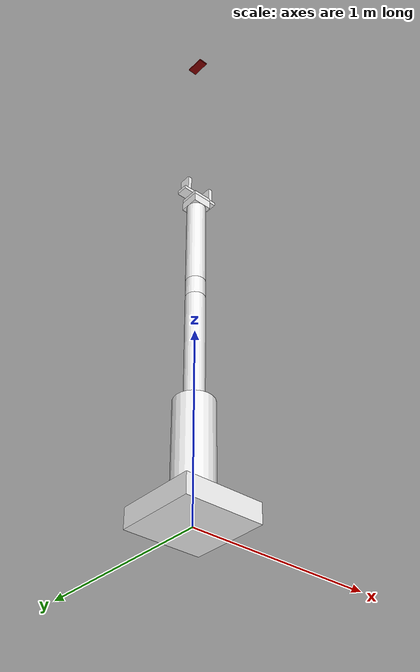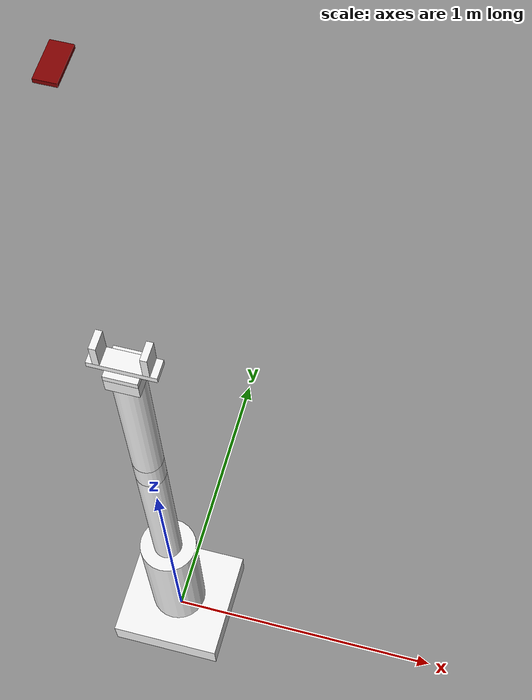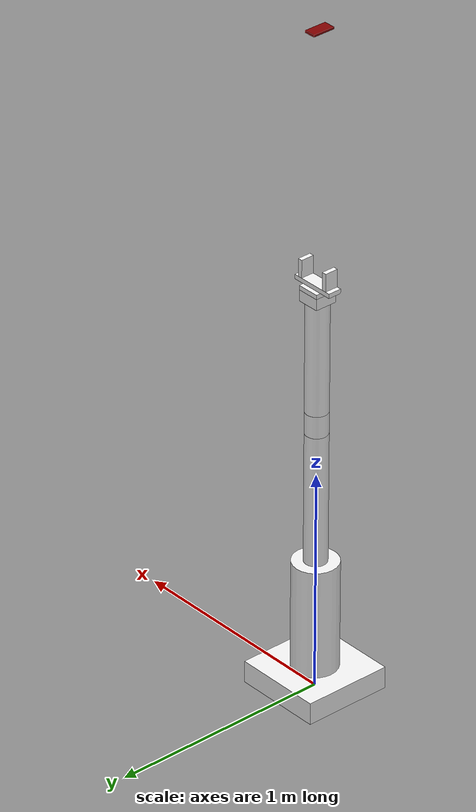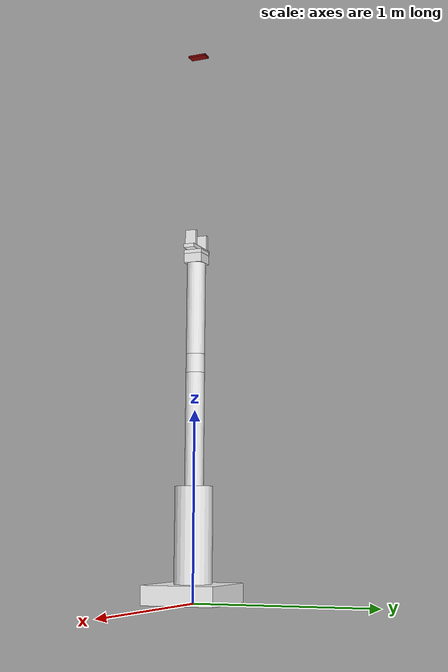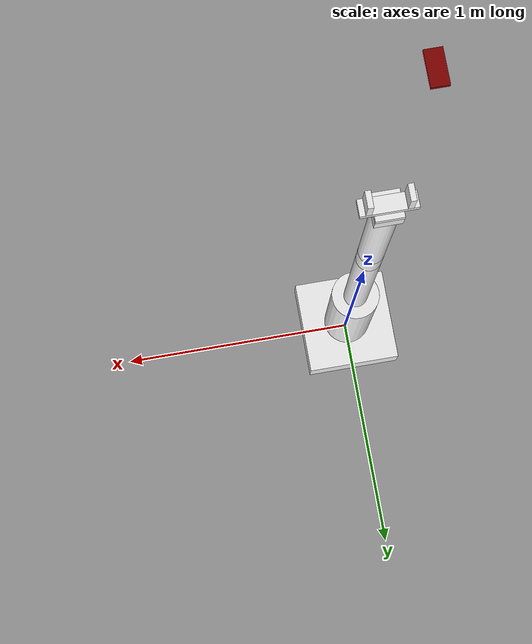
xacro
<?xml version="1.0"?>
<robot xmlns:xacro="http://www.ros.org/wiki/xacro" name="pnp">
    <xacro:arg name="initial_positions_file" default="initial_positions.yaml" />

    <!-- Import pnp urdf file -->
    <xacro:include filename="$(find arm_description)/urdf/pnp.urdf.xacro" />

    <!-- Import control_xacro -->
    <xacro:include filename="pnp.ros2_control.xacro" />

    <xacro:pnp_ros2_control name="FakeSystem" initial_positions_file="$(arg initial_positions_file)"/>

</robot>

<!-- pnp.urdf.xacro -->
<robot name="pnp" xmlns:xacro="http://www.ros.org/wiki/xacro">

    <xacro:include filename="common_properties.xacro" />
    <xacro:include filename="robotic_arm.xacro" />
    <xacro:include filename="gripper.xacro" />
    <xacro:include filename="rgbd_camera.xacro" />
    <xacro:include filename="pnp_gazebo.xacro" />

</robot>

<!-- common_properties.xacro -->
<robot xmlns:xacro="http://www.ros.org/wiki/xacro">

    <material name="green">
        <color rgba="0 0.5 0 1" />
    </material>

    <material name="grey">
        <color rgba="0.95 0.95 0.95 1" />
    </material>

    <material name="blue">
        <color rgba="0 0 0.5 1" />
    </material>

    <material name="red">
        <color rgba="0.5 0 0 1" />
    </material>

    <xacro:macro name="box_inertia" params="m x y z o_xyz o_rpy">
        <inertial>
            <mass value="${m}" />
            <origin xyz="${o_xyz}" rpy="${o_rpy}" />
            <inertia ixx="${(m/12) * (y*y + z*z)}" ixy="0" ixz="0"
                     iyy="${(m/12) * (x*x + z*z)}" iyz="0"
                     izz="${(m/12) * (x*x + y*y)}" />
        </inertial>
    </xacro:macro>

    <xacro:macro name="cylinder_inertia" params="m r h o_xyz o_rpy">
        <inertial>
            <mass value="${m}" />
            <origin xyz="${o_xyz}" rpy="${o_rpy}" />
            <inertia ixx="${(m/12) * (3*r*r + h*h)}" ixy="0" ixz="0"
                      iyy="${(m/12) * (3*r*r + h*h)}" iyz="0"
                      izz="${(m*r*r)/2}" />
        </inertial>
    </xacro:macro>

    <xacro:macro name="sphere_inertia" params="m r o_xyz o_rpy" >
        <inertial>
            <mass value="${m}" />
            <origin xyz="${o_xyz}" rpy="${o_rpy}" />
            <inertia ixx="${(2*m*r*r)/5}" ixy="0" ixz="0"
                    iyy="${(2*m*r*r)/5}" iyz="0"
                    izz="${(2*m*r*r)/5}" />
        </inertial>
    </xacro:macro>

</robot>

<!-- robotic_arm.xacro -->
<robot xmlns:xacro="http://www.ros.org/wiki/xacro">

    <xacro:property name="base_length" value="0.4" />
    <xacro:property name="base_width" value="0.4" />
    <xacro:property name="base_height" value="0.1" />
    <xacro:property name="shoulder_length" value="0.5" />
    <xacro:property name="shoulder_radius" value="0.1" />
    <xacro:property name="arm_radius" value="0.05" />
    <xacro:property name="arm_length" value="0.6" />
    <xacro:property name="elbow_radius" value="0.05" />
    <xacro:property name="elbow_length" value="0.1" />
    <xacro:property name="forearm_radius" value="0.05" />
    <xacro:property name="forearm_length" value="0.5" />
    <xacro:property name="wrist_length" value="0.1" />
    <xacro:property name="wrist_width" value="0.1" />
    <xacro:property name="wrist_height" value="0.05" />
    <xacro:property name="hand_length" value="0.1" />
    <xacro:property name="hand_width" value="0.1" />
    <xacro:property name="hand_height" value="0.02" />

    <link name="world" />

    <link name="base_link" >
        <visual>
            <geometry>
                <box size="${base_length} ${base_width} ${base_height}" />
            </geometry>
            <origin xyz="0 0 ${base_height / 2.0}" rpy="0 0 0" />
            <material name="grey" />
        </visual>

        <collision>
            <geometry>
                <box size="${base_length} ${base_width} ${base_height}" />
            </geometry>
            <origin xyz="0 0 ${base_height / 2.0}" rpy="0 0 0" />
        </collision>

        <xacro:box_inertia m="5.0" x="${base_length}" y="${base_width}" z="${base_height}"
                           o_xyz="0 0 ${base_height / 2.0}" o_rpy="0 0 0" />
    </link>

    <link name="shoulder_link">
        <visual>
            <geometry>
                <cylinder radius="${shoulder_radius}" length="${shoulder_length}" />
            </geometry>
            <origin xyz="0 0 ${shoulder_length / 2.0}" rpy="0 0 0" />
            <material name="grey" />
        </visual>

        <collision>
            <geometry>
                <cylinder radius="${shoulder_radius}" length="${shoulder_length}" />
            </geometry>
            <origin xyz="0 0 ${shoulder_length / 2.0}" rpy="0 0 0" />
        </collision>

        <xacro:cylinder_inertia m="1.0" r="${shoulder_radius}" h="${shoulder_length}"
                                    o_xyz="0 0 ${shoulder_length / 2.0}" o_rpy="0 0 0" />
    </link>

    <link name="arm_link">
        <visual>
            <geometry>
                <cylinder radius="${arm_radius}" length="${arm_length}" />
            </geometry>
            <origin xyz="0 0 ${arm_length / 2.0}" rpy="0 0 0" />
            <material name="grey" />
        </visual>

        <collision>
            <geometry>
                <cylinder radius="${arm_radius}" length="${arm_length}" />
            </geometry>
            <origin xyz="0 0 ${arm_length / 2.0}" rpy="0 0 0" />
        </collision>

        <xacro:cylinder_inertia m="1.0" r="${arm_radius}" h="${arm_length}"
                                    o_xyz="0 0 ${arm_length / 2.0}" o_rpy="0 0 0" />
    </link>

    <link name="elbow_link">
        <visual>
            <geometry>
                <cylinder radius="${elbow_radius}" length="${elbow_length}" />
            </geometry>
            <origin xyz="0 0 ${elbow_length / 2.0}" rpy="0 0 0" />
            <material name="grey" />
        </visual>

        <collision>
            <geometry>
                <cylinder radius="${elbow_radius}" length="${elbow_length}" />
            </geometry>
            <origin xyz="0 0 ${elbow_length / 2.0}" rpy="0 0 0" />
        </collision>

        <xacro:cylinder_inertia m="1.0" r="${elbow_radius}" h="${elbow_length}"
                                    o_xyz="0 0 ${elbow_length / 2.0}" o_rpy="0 0 0" />
    </link>

    <link name="forearm_link">
        <visual>
            <geometry>
                <cylinder radius="${forearm_radius}" length="${forearm_length}" />
            </geometry>
            <origin xyz="0 0 ${forearm_length / 2.0}" rpy="0 0 0" />
            <material name="grey" />
        </visual>

        <collision>
            <geometry>
                <cylinder radius="${forearm_radius}" length="${forearm_length}" />
            </geometry>
            <origin xyz="0 0 ${forearm_length / 2.0}" rpy="0 0 0" />
        </collision>

        <xacro:cylinder_inertia m="1.0" r="${forearm_radius}" h="${forearm_length}"
                                    o_xyz="0 0 ${forearm_length / 2.0}" o_rpy="0 0 0" />
    </link>

    <link name="wrist_link" >
        <visual>
            <geometry>
                <box size="${wrist_length} ${wrist_width} ${wrist_height}" />
            </geometry>
            <origin xyz="0 0 ${wrist_height / 2.0}" rpy="0 0 0" />
            <material name="grey" />
        </visual>

        <collision>
            <geometry>
                <box size="${wrist_length} ${wrist_width} ${wrist_height}" />
            </geometry>
            <origin xyz="0 0 ${wrist_height / 2.0}" rpy="0 0 0" />
        </collision>

        <xacro:box_inertia m="0.5" x="${wrist_length}" y="${wrist_width}" z="${wrist_height}"
                           o_xyz="0 0 ${wrist_height / 2.0}" o_rpy="0 0 0" />
    </link>

    <link name="hand_link" >
        <visual>
            <geometry>
                <box size="${hand_length} ${hand_width} ${hand_height}" />
            </geometry>
            <origin xyz="0 0 ${hand_height / 2.0}" rpy="0 0 0" />
            <material name="grey" />
        </visual>

        <collision>
            <geometry>
                <box size="${hand_length} ${hand_width} ${hand_height}" />
            </geometry>
            <origin xyz="0 0 ${hand_height / 2.0}" rpy="0 0 0" />
        </collision>

        <xacro:box_inertia m="0.5" x="${hand_length}" y="${hand_width}" z="${hand_height}"
                           o_xyz="0 0 ${hand_height / 2.0}" o_rpy="0 0 0" />
    </link>

    <link name="tool_link" />

    <joint name="world_base_joint" type="fixed">
        <parent link="world" />
        <child link="base_link" />
        <origin xyz="0 0 0" rpy="0 0 0" />
    </joint>

    <joint name="base_shoulder_joint" type="revolute">
        <parent link="base_link" />
        <child link="shoulder_link" />
        <origin xyz="0 0 ${base_height}" rpy="0 0 0" />
        <axis xyz="0 0 1" />
        <limit effort="1000.0" velocity="1.0" lower="${-pi}" upper="${pi}" />
        <dynamics friction="0.3" damping="0.3" />
    </joint>

    <joint name="shoulder_arm_joint" type="revolute">
        <parent link="shoulder_link" />
        <child link="arm_link" />
        <origin xyz="0 0 ${shoulder_length}" rpy="0 0 0" />
        <axis xyz="0 1 0" />
        <limit effort="1000.0" velocity="1.0" lower="0.0" upper="2.5" />
        <dynamics friction="0.3" damping="0.3" />
    </joint>

    <joint name="arm_elbow_joint" type="revolute">
        <parent link="arm_link" />
        <child link="elbow_link" />
        <origin xyz="0 0 ${arm_length}" rpy="0 0 0" />
        <axis xyz="0 1 0" />
        <limit effort="1000.0" velocity="1.0" lower="0.0" upper="2.5" />
        <dynamics friction="0.3" damping="0.3" />
    </joint>

    <joint name="elbow_forearm_joint" type="revolute">
        <parent link="elbow_link" />
        <child link="forearm_link" />
        <origin xyz="0 0 ${elbow_length}" rpy="0 0 0" />
        <axis xyz="0 0 1" />
        <limit effort="1000.0" velocity="1.0" lower="${-pi}" upper="${pi}" />
        <dynamics friction="0.3" damping="0.3" />
    </joint>

    <joint name="forearm_wrist_joint" type="revolute">
        <parent link="forearm_link" />
        <child link="wrist_link" />
        <origin xyz="0 0 ${forearm_length}" rpy="0 0 0" />
        <axis xyz="0 1 0" />
        <limit effort="1000.0" velocity="1.0" lower="${-pi / 2.0}" upper="${pi / 2.0}" />
        <dynamics friction="0.3" damping="0.3" />
    </joint>

    <joint name="wrist_hand_joint" type="continuous">
        <parent link="wrist_link" />
        <child link="hand_link" />
        <origin xyz="0 0 ${wrist_height}" rpy="0 0 0" />
        <dynamics friction="0.3" damping="0.3" />
        <axis xyz="0 0 1" />
    </joint>

    <joint name="hand_tool_joint" type="fixed">
        <parent link="hand_link" />
        <child link="tool_link" />
        <origin xyz="0 0 ${hand_height}" />
    </joint>

</robot>

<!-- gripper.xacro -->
<robot xmlns:xacro="http://www.ros.org/wiki/xacro">

    <xacro:property name="gripper_base_length" value="0.2" />
    <xacro:property name="gripper_base_width" value="0.06" />
    <xacro:property name="gripper_base_height" value="0.02" />
    <xacro:property name="gripper_finger_length" value="0.02" />
    <xacro:property name="gripper_finger_width" value="0.06" />
    <xacro:property name="gripper_finger_height" value="0.08" />

    <link name="gripper_base_link" >
        <visual>
            <geometry>
                <box size="${gripper_base_length} ${gripper_base_width} ${gripper_base_height}" />
            </geometry>
            <origin xyz="0 0 ${gripper_base_height / 2.0}" rpy="0 0 0" />
            <material name="grey" />
        </visual>

        <collision>
            <geometry>
                <box size="${gripper_base_length} ${gripper_base_width} ${gripper_base_height}" />
            </geometry>
            <origin xyz="0 0 ${gripper_base_height / 2.0}" rpy="0 0 0" />
        </collision>

        <xacro:box_inertia m="1.0" x="${gripper_base_length}"
                            y="${gripper_base_width}" z="${gripper_base_height}"
                           o_xyz="0 0 ${gripper_base_height / 2.0}" o_rpy="0 0 0" />
    </link>

    <link name="gripper_left_finger_link" >
        <visual>
            <geometry>
                <box size="${gripper_finger_length} ${gripper_finger_width} ${gripper_finger_height}" />
            </geometry>
            <origin xyz="0 0 ${gripper_finger_height / 2.0}" rpy="0 0 0" />
            <material name="grey" />
        </visual>

        <collision>
            <geometry>
                <box size="${gripper_finger_length} ${gripper_finger_width} ${gripper_finger_height}" />
            </geometry>
            <origin xyz="0 0 ${gripper_finger_height / 2.0}" rpy="0 0 0" />
        </collision>

        <xacro:box_inertia m="0.5" x="${gripper_finger_length}"
                           y="${gripper_finger_width}" z="${gripper_finger_height}"
                           o_xyz="0 0 ${gripper_finger_height / 2.0}" o_rpy="0 0 0" />
    </link>

    <link name="gripper_right_finger_link" >
        <visual>
            <geometry>
                <box size="${gripper_finger_length} ${gripper_finger_width} ${gripper_finger_height}" />
            </geometry>
            <origin xyz="0 0 ${gripper_finger_height / 2.0}" rpy="0 0 0" />
            <material name="grey" />
        </visual>

        <collision>
            <geometry>
                <box size="${gripper_finger_length} ${gripper_finger_width} ${gripper_finger_height}" />
            </geometry>
            <origin xyz="0 0 ${gripper_finger_height / 2.0}" rpy="0 0 0" />
        </collision>

        <xacro:box_inertia m="0.5" x="${gripper_finger_length}"
                           y="${gripper_finger_width}" z="${gripper_finger_height}"
                           o_xyz="0 0 ${gripper_finger_height / 2.0}" o_rpy="0 0 0" />
    </link>

    <joint name="gripper_base_joint" type="fixed">
        <parent link="tool_link" />
        <child link="gripper_base_link" />
        <origin xyz="0 0 0" rpy="0 0 0" />
    </joint>

    <joint name="gripper_left_finger_joint" type="prismatic">
        <parent link="gripper_base_link" />
        <child link="gripper_left_finger_link" />
        <origin xyz="-0.07 0 ${gripper_base_height}" rpy="0 0 0" />
        <axis xyz="1 0 0" />
        <limit effort="1000.0" velocity="1.0"
               lower="0.0" upper="0.06" />
        <dynamics damping="20.0" friction="2.5" />
    </joint>

    <joint name="gripper_right_finger_joint" type="prismatic">
        <parent link="gripper_base_link" />
        <child link="gripper_right_finger_link" />
        <origin xyz="0.07 0 ${gripper_base_height}" rpy="0 0 0" />
        <axis xyz="-1 0 0" />
        <limit effort="1000.0" velocity="1.0"
               lower="0.0" upper="0.06" />
        <dynamics damping="20.0" friction="2.5" />
    </joint>

</robot>

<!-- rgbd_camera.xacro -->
<robot xmlns:xacro="http://www.ros.org/wiki/xacro">

    <xacro:property name="camera_length" value="0.01" />
    <xacro:property name="camera_width" value="0.1" />
    <xacro:property name="camera_height" value="0.05" />

    <link name="camera_link_optical" />

    <link name="camera_link">
        <visual>
            <geometry>
                <box size="${camera_length} ${camera_width} ${camera_height}" />
            </geometry>
            <origin xyz="0 0 0" rpy="0 0 0" />
            <material name="red" />
        </visual>
        <collision>
            <geometry>
                <box size="${camera_length} ${camera_width} ${camera_height}" />
            </geometry>
            <origin xyz="0 0 0" rpy="0 0 0" />
        </collision>
        <xacro:box_inertia m="0.5" x="${camera_length}" y="${camera_width}" z="${camera_height}"
            o_xyz="0 0 0" o_rpy="0 0 0" />
    </link>

    <joint name="world_camera_joint" type="fixed">
        <parent link="world" />
        <child link="camera_link" />
        <origin xyz="0 0 3.0" rpy="0 ${pi / 2.0} 0" />
    </joint>

    <joint name="camera_optical_joint" type="fixed">
        <origin xyz="0 0 0" rpy="${-pi/2} 0 ${-pi/2}" />
        <parent link="camera_link" />
        <child link="camera_link_optical" />
    </joint>

    <gazebo reference="camera_link">
      <sensor name="rgbd_camera" type="rgbd_camera">
        <camera>
          <horizontal_fov>1.089</horizontal_fov>
          <image>
            <width>640</width>
            <height>480</height>
            <format>R8G8B8</format>
          </image>
          <clip>
            <near>0.1</near>
            <far>150.0</far>
          </clip>
          <optical_frame_id>camera_link_optical</optical_frame_id>
        </camera>

        <depth_camera>
            <clip>
                <near>0.1</near>
                <far>5.0</far>
            </clip>
        </depth_camera>

        <always_on>1</always_on>
        <topic>camera</topic>
        <update_rate>5</update_rate>
        <visualize>true</visualize>
      </sensor>
    </gazebo>

</robot>
